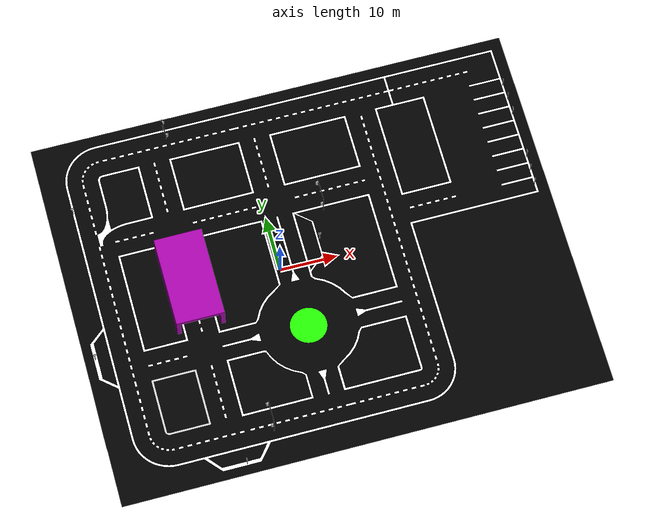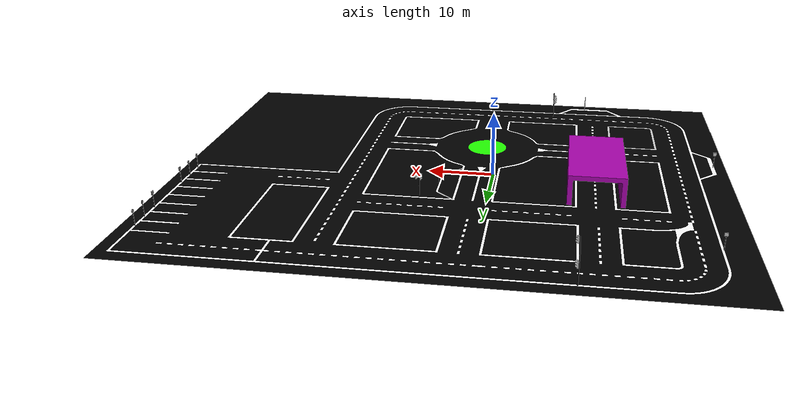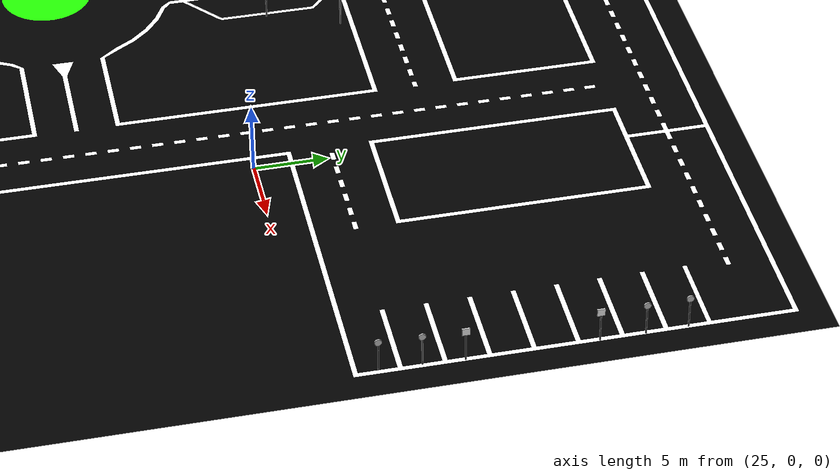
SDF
<sdf version="1.7">
 <world name="default">
  <scene>
   <ambient>0.75 0.75 0.75 1</ambient>
   <background>0.9 0.9 0.9 1</background>
   <shadows>false</shadows>
   <sky><clouds><speed>3</speed></clouds></sky>
  </scene>
  <include><uri>model://sun</uri></include>
  <gravity>0 0 -9.8</gravity>
  <magnetic_field>6e-06 2.3e-05 -4.2e-05</magnetic_field>
  <atmosphere type="adiabatic"/>
  <physics type="ode">
   <max_step_size>0.001</max_step_size>
   <real_time_factor>1</real_time_factor>
   <real_time_update_rate>1000</real_time_update_rate>
  </physics>
  <spherical_coordinates>
   <surface_model>EARTH_WGS84</surface_model>
   <latitude_deg>30.0</latitude_deg>
   <longitude_deg>26.0</longitude_deg>
   <elevation>0.0</elevation>
   <heading_deg>180</heading_deg>
  </spherical_coordinates>
  <model name="road">
   <static>1</static>
   <link name="link">
    <collision name="collision">
     <geometry><mesh><uri>model://road/meshes/road_full0.dae</uri><scale>1 1 1</scale></mesh></geometry>
    </collision>
    <visual name="visual">
     <geometry><mesh><uri>model://road/meshes/road_full0.dae</uri><scale>1 1 1</scale></mesh></geometry>
    </visual>
   </link>
   <pose>11.9855 3.13939 0 0 -0 0</pose>
  </model>
  <model name="Sign Parkyasak">
   <static>1</static>
   <link name="link">
    <collision name="collision">
     <geometry><mesh><uri>model://sign_parkyasak/meshes/model.dae</uri><scale>1 1 1</scale></mesh></geometry>
    </collision>
    <visual name="visual">
     <geometry><mesh><uri>model://sign_parkyasak/meshes/model.dae</uri><scale>1 1 1</scale></mesh></geometry>
    </visual>
   </link>
   <pose>46.4175 4 0 0 0 -3.14159</pose>
  </model>
  <model name="Sign Parkyapilmaz">
   <static>1</static>
   <link name="link">
    <collision name="collision">
     <geometry><mesh><uri>model://sign_parkyapilmaz/meshes/model.dae</uri><scale>1 1 1</scale></mesh></geometry>
    </collision>
    <visual name="visual">
     <geometry><mesh><uri>model://sign_parkyapilmaz/meshes/model.dae</uri><scale>1 1 1</scale></mesh></geometry>
    </visual>
   </link>
   <pose>46.4875 6.73627 0 0 -0 3.14159</pose>
  </model>
  <model name="Sign Engelli">
   <static>1</static>
   <link name="link">
    <collision name="collision">
     <geometry><mesh><uri>model://sign_engelli/meshes/model.dae</uri><scale>1 1 1</scale></mesh></geometry>
    </collision>
    <visual name="visual">
     <geometry><mesh><uri>model://sign_engelli/meshes/model.dae</uri><scale>1 1 1</scale></mesh></geometry>
    </visual>
   </link>
   <pose>46.6344 9.43355 0 0 0 -3.14159</pose>
  </model>
  <model name="Sign Engelli_clone">
   <static>1</static>
   <link name="link">
    <collision name="collision">
     <geometry><mesh><uri>model://sign_engelli/meshes/model.dae</uri><scale>1 1 1</scale></mesh></geometry>
    </collision>
    <visual name="visual">
     <geometry><mesh><uri>model://sign_engelli/meshes/model.dae</uri><scale>1 1 1</scale></mesh></geometry>
    </visual>
   </link>
   <pose>46.6759 17.9566 0 0 0 -3.14159</pose>
  </model>
  <model name="Sign Parkyapilmaz_clone">
   <static>1</static>
   <link name="link">
    <collision name="collision">
     <geometry><mesh><uri>model://sign_parkyapilmaz/meshes/model.dae</uri><scale>1 1 1</scale></mesh></geometry>
    </collision>
    <visual name="visual">
     <geometry><mesh><uri>model://sign_parkyapilmaz/meshes/model.dae</uri><scale>1 1 1</scale></mesh></geometry>
    </visual>
   </link>
   <pose>46.6598 20.9187 0 0 -0 3.14159</pose>
  </model>
  <model name="Sign Parkyasak_clone">
   <static>1</static>
   <link name="link">
    <collision name="collision">
     <geometry><mesh><uri>model://sign_parkyasak/meshes/model.dae</uri><scale>1 1 1</scale></mesh></geometry>
    </collision>
    <visual name="visual">
     <geometry><mesh><uri>model://sign_parkyasak/meshes/model.dae</uri><scale>1 1 1</scale></mesh></geometry>
    </visual>
   </link>
   <pose>46.6016 23.6859 0 0 0 -3.14159</pose>
  </model>
  <model name="Sign Durak">
   <static>1</static>
   <link name="link">
    <collision name="collision">
     <geometry><mesh><uri>model://sign_durak/meshes/model.dae</uri><scale>1 1 1</scale></mesh></geometry>
    </collision>
    <visual name="visual">
     <geometry><mesh><uri>model://sign_durak/meshes/model.dae</uri><scale>1 1 1</scale></mesh></geometry>
    </visual>
   </link>
   <pose>7.94947 3.92868 0 0 0 -1.5708</pose>
  </model>
  <model name="Sign Durak_0">
   <static>1</static>
   <link name="link">
    <collision name="collision">
     <geometry><mesh><uri>model://sign_durak/meshes/model.dae</uri><scale>1 1 1</scale></mesh></geometry>
    </collision>
    <visual name="visual">
     <geometry><mesh><uri>model://sign_durak/meshes/model.dae</uri><scale>1 1 1</scale></mesh></geometry>
    </visual>
   </link>
   <pose>-34.2486 -7.7009 0 0 -0 1.5708</pose>
  </model>
  <model name="Sign Durak_0_clone">
   <static>1</static>
   <link name="link">
    <collision name="collision">
     <geometry><mesh><uri>model://sign_durak/meshes/model.dae</uri><scale>1 1 1</scale></mesh></geometry>
    </collision>
    <visual name="visual">
     <geometry><mesh><uri>model://sign_durak/meshes/model.dae</uri><scale>1 1 1</scale></mesh></geometry>
    </visual>
   </link>
   <pose>-14.2561 -32.2097 0 0 0 -3.14159</pose>
  </model>
  <model name="Sign Ikiyon">
   <static>1</static>
   <link name="link">
    <collision name="collision">
     <geometry><mesh><uri>model://sign_ikiyon/meshes/model.dae</uri><scale>1 1 1</scale></mesh></geometry>
    </collision>
    <visual name="visual">
     <geometry><mesh><uri>model://sign_ikiyon/meshes/model.dae</uri><scale>1 1 1</scale></mesh></geometry>
    </visual>
   </link>
   <pose>-31.6764 19.3224 0 0 -0 1.5708</pose>
  </model>
  <model name="tunnel">
   <static>1</static>
   <link name="link">
    <collision name="collision">
     <geometry><mesh><uri>model://tunnel/meshes/model.dae</uri><scale>1 1 1</scale></mesh></geometry>
    </collision>
    <visual name="visual">
     <geometry><mesh><uri>model://tunnel/meshes/model.dae</uri><scale>1 1 1</scale></mesh></geometry>
    </visual>
   </link>
   <pose>-15.6239 1.4043 0 0 -0 0</pose>
  </model>
  <audio><device>default</device></audio>
  <model name="traffic_light_green">
   <static>1</static>
   <link name="link">
    <collision name="collision">
     <geometry><mesh><uri>model://traffic_light_green/meshes/model.dae</uri><scale>1 1 1</scale></mesh></geometry>
    </collision>
    <visual name="visual">
     <geometry><mesh><uri>model://traffic_light_green/meshes/model.dae</uri><scale>1 1 1</scale></mesh></geometry>
    </visual>
   </link>
   <pose>-0.208598 0.040928 0 0 -0 0</pose>
  </model>
 </world>
</sdf>
